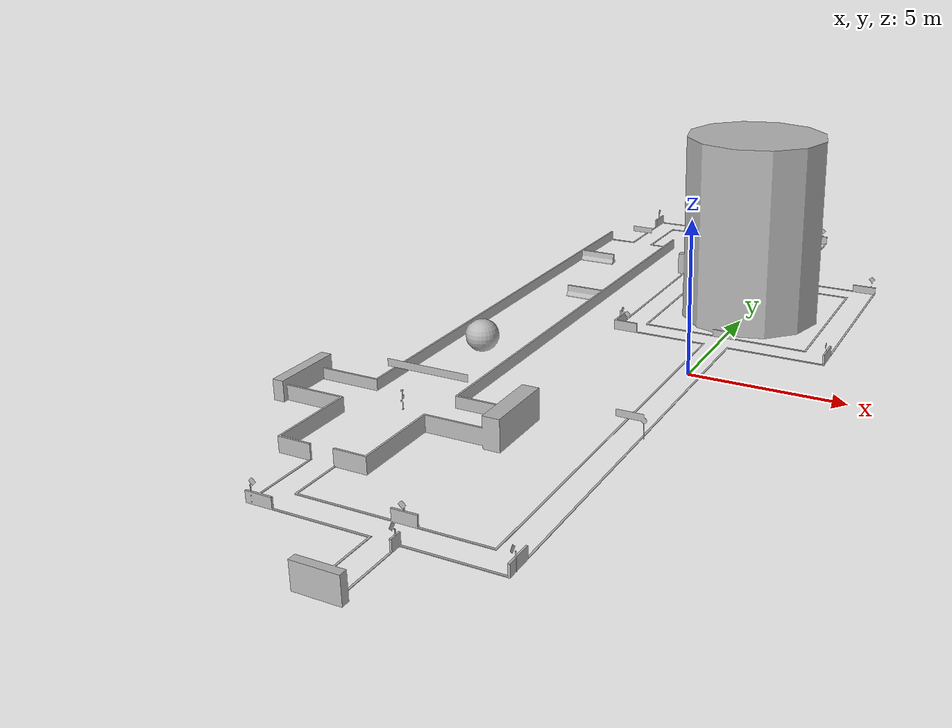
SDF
<?xml version="1.0" ?>
<sdf version="1.6">
  <model name="all_levels_latest">
    <static>true</static>
    <link name="link">
      <collision name="collision">
        <pose>0 0 0 0 0 0</pose>
        <geometry>
          <mesh>
            <uri>model://all_levels_latest/meshes/map.obj</uri>
          </mesh>
        </geometry>
      </collision>
      <visual name="visual">
        <pose>0 0 0 0 0 0</pose>
        <geometry>
          <mesh>
            <uri>model://all_levels_latest/meshes/map.obj</uri>
          </mesh>
        </geometry>
      </visual>
    </link>
  </model>
</sdf>
